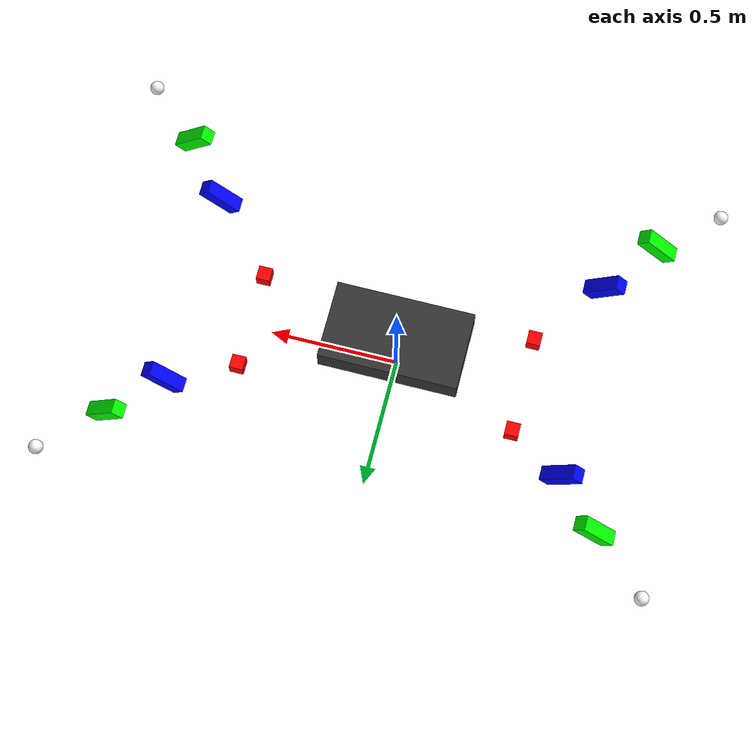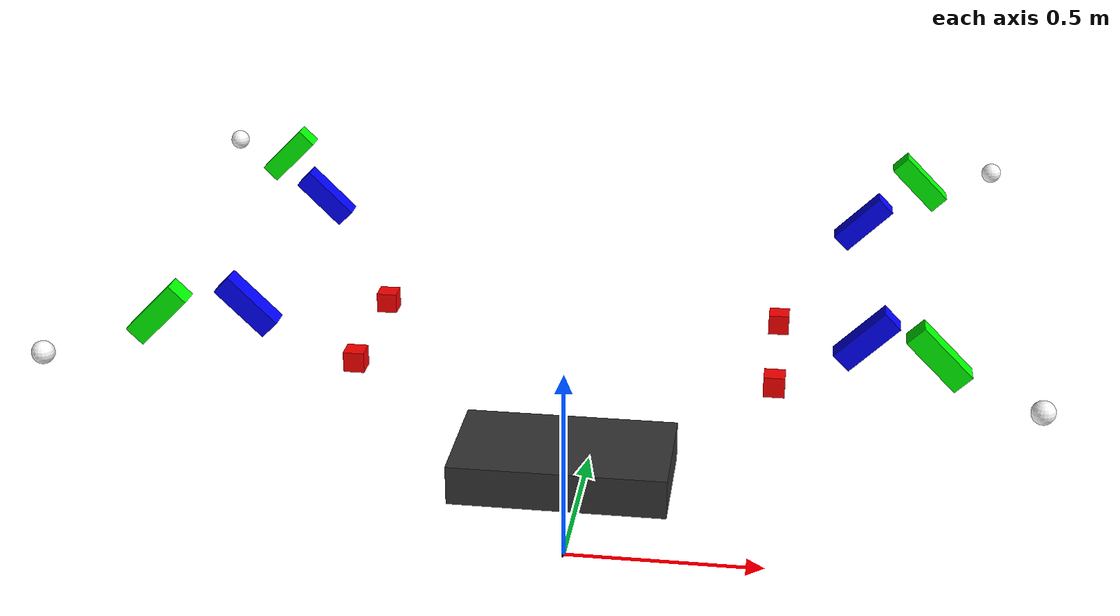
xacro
<?xml version="1.0"?>
<robot name="fyp_quadruped" xmlns:xacro="http://ros.org/wiki/xacro">

  <!-- Model Dimensions -->
  <xacro:property name="pi" value="3.1415" />
  <xacro:property name="body_length" value="0.53" />
  <xacro:property name="body_width" value="0.3" />
  <xacro:property name="body_height" value="0.1" />
  <xacro:property name="shoulder" value="0.05" />
  <xacro:property name="leg_length" value="0.15" />
  <xacro:property name="leg_width" value="0.05" />
  <xacro:property name="leg_height" value="0.05" />
  <xacro:property name="feet_radius" value="0.025"/>
  <xacro:property name="damping_value" value="10" />
  <xacro:property name="friction_value" value="0.1" />

  <!-- Import Rviz colors -->
  <xacro:include filename="$(find fyp_quadruped)/urdf/materials.xacro" />

  <!-- gazebo ros joint state pub plugin -->
  <gazebo>
    <plugin name="joint_state_publisher" filename="libgazebo_ros_joint_state_publisher.so">
      <robotNamespace>/fyp_quadruped</robotNamespace>
      <jointName>shoulder_joint_lf, elbow_joint_lf, knee_joint_lf, shoulder_joint_rf, elbow_joint_rf, knee_joint_rf, shoulder_joint_lb, elbow_joint_lb, knee_joint_lb, shoulder_joint_rb, elbow_joint_rb, knee_joint_rb,</jointName>
      <updateRate>60.0</updateRate>
      <alwaysOn>true</alwaysOn>
    </plugin>
  </gazebo>

  <!-- gazebo ros control plugin -->
<gazebo>
  <plugin name="gazebo_ros_control" filename="libgazebo_ros_control.so">
    <robotNamespace>/fyp_quadruped</robotNamespace>
  </plugin>
</gazebo>

  <!-- Inertias -->
  <xacro:macro name="box_inertial" params="mass length width height">
    <inertial>
      <mass value="${mass}" />
      <inertia ixx="${mass*(height*height+length*length)/12.0}" ixy="0.0" ixz="0.0" iyy="${mass*(width*width+length*length)/12.0}" iyz="0.0" izz="${mass*(width*width+height*height)/12.0}" />
    </inertial>
  </xacro:macro>

  <xacro:macro name="feet_inertial" params="mass radius">
    <inertial>
      <mass value="${mass}" />
      <inertia ixx="${mass*2*(radius*radius)/5.0}" ixy="0.0" ixz="0.0" iyy="${mass*2*(radius*radius)/5.0}" iyz="0.0" izz="${mass*2*(radius*radius)/5.0}" />
    </inertial>
  </xacro:macro>

  <!-- Main Body -->
  <link name="dummy_link">
    <visual>
      <geometry>
        <box size="0.01 0.01 0.01"/>
      </geometry>
      <material name="black"/>
    </visual>
    <inertial>
      <mass value="0.01" />
      <inertia ixx="0.00001" ixy="0.0" ixz="0.0" iyy="0.00001" iyz="0.0" izz="0.00001" />
    </inertial>
    <gazebo reference="dummy_link">
    </gazebo>
  </link>

  <link name="base_link">
    <visual>
      <origin xyz="0 0 0.2621" rpy="0 0 0"/>
      <geometry>
        <box size="${body_length} ${body_width} ${body_height}"/>
      </geometry>
      <material name="grey"/>
    </visual>
    <collision>
      <origin xyz="0 0 0.2621" rpy="0 0 0"/>
      <geometry>
        <box size="${body_width} ${body_width} ${body_height}"/>
      </geometry>
    </collision>
    <xacro:box_inertial mass="${3}" length="${body_length}" width="${body_width}" height="${body_height}"/>
  </link>

  <joint name="dummy_base_joint" type="fixed">
    <parent link="dummy_link"/>
    <child link="base_link"/>
    <origin xyz="0 0 0" rpy="0 0 0"/>
  </joint>
  <gazebo reference="base_link">
    <mu1>100000.0</mu1>
    <mu2>100000.0</mu2>
    <material>Gazebo/Grey</material>
  </gazebo>
  <gazebo reference="dummy_base_joint">
    <provideFeedback>true</provideFeedback>
    <disableFixedJointLumping>true</disableFixedJointLumping>
  </gazebo>

  <!--Left Front Leg-->
  <link name="shoulder_link_lf">
    <collision>
      <origin xyz="0.25 0.175 0.2621" rpy="0 0 0"/>
      <geometry>
        <box size="${shoulder} ${shoulder} ${shoulder}"/>
      </geometry>
    </collision>
    <visual>
      <origin xyz="0.25 0.175 0.2621" rpy="0 0 0"/>
      <geometry>
        <box size="${shoulder} ${shoulder} ${shoulder}"/>
      </geometry>
      <material name="red"/>
    </visual>
    <xacro:box_inertial mass="${0.0625}" length="${shoulder}" width="${shoulder}" height="${shoulder}"/>
  </link>

  <joint name="shoulder_joint_lf" type="revolute">
    <limit effort="100.0" lower="${-0.5*pi}" upper="${0.5*pi}" velocity="0.5"/>
    <origin xyz="0.25 0.15 0.2621"/>
    <axis xyz="1 0 0"/>
    <parent link="base_link"/>
    <child link="shoulder_link_lf"/>
    <dynamics damping="${damping_value}" friction="${friction_value}"/>
  </joint>
  <gazebo reference="shoulder_link_lf">
    <mu1>100000.0</mu1>
    <mu2>100000.0</mu2>
    <material>Gazebo/Red</material>
  </gazebo>

  <link name="thigh_link_lf">
    <collision>
      <origin xyz="0.197 0.175 0.2091" rpy="0 5.5 0"/>
      <geometry>
        <box size="${leg_length} ${leg_width} ${leg_height}"/>
      </geometry>
    </collision>
    <visual>
      <origin xyz="0.197 0.175 0.2091" rpy="0 5.5 0"/>
      <geometry>
        <box size="${leg_length} ${leg_width} ${leg_height}"/>
      </geometry>
      <material name="blue"/>
    </visual>
    <xacro:box_inertial mass="${0.125}" length="${leg_length}" width="${leg_width}" height="${leg_height}"/>
  </link>

  <joint name="elbow_joint_lf" type="revolute">
    <limit effort="100.0" lower="${-0.5*pi}" upper="${0.5*pi}" velocity="0.5"/>
    <origin xyz="0.25 0.175 0.2621"/>
    <axis xyz="0 1 0"/>
    <parent link="shoulder_link_lf"/>
    <child link="thigh_link_lf"/>
    <dynamics damping="${damping_value}" friction="${friction_value}"/>
  </joint>
  <gazebo reference="thigh_link_lf">
    <mu1>100000.0</mu1>
    <mu2>100000.0</mu2>
    <material>Gazebo/Blue</material>
  </gazebo>

  <link name="shank_link_lf">
    <collision>
      <origin xyz="0.197 0.175 0.103" rpy="0 0.785 0"/>
      <geometry>
        <box size="${leg_length} ${leg_width} ${leg_height}"/>
      </geometry>
    </collision>
    <visual>
      <origin xyz="0.197 0.175 0.103" rpy="0 0.785 0"/>
      <geometry>
        <box size="${leg_length} ${leg_width} ${leg_height}"/>
      </geometry>
      <material name="green"/>
    </visual>
    <xacro:box_inertial mass="${0.125}" length="${leg_length}" width="${leg_width}" height="${leg_height}"/>
  </link>

  <joint name="knee_joint_lf" type="revolute">
    <limit effort="100.0" lower="${-0.5*pi}" upper="${0.5*pi}" velocity="0.5"/>
    <origin xyz="0.144 0.175 0.156"/>
    <axis xyz="0 1 0"/>
    <parent link="thigh_link_lf"/>
    <child link="shank_link_lf"/>
    <dynamics damping="${damping_value}" friction="${friction_value}"/>
  </joint>
  <gazebo reference="shank_link_lf">
    <mu1>100000.0</mu1>
    <mu2>100000.0</mu2>
    <material>Gazebo/Green</material>
  </gazebo>

  <link name="feet_link_lf">
    <collision>
      <origin xyz="0.25 0.175 0.025" rpy="0 0 0"/>
      <geometry>
        <sphere radius="${feet_radius}"/>
      </geometry>
    </collision>
    <visual>
      <origin xyz="0.25 0.175 0.025" rpy="0 0 0"/>
      <geometry>
        <sphere radius="${feet_radius}"/>
      </geometry>
      <material name="white"/>
    </visual>
    <xacro:feet_inertial mass="0.05" radius="${feet_radius}"/>
  </link>

  <joint name="ankle_joint_lf" type="fixed">
    <origin xyz="0.144 0.175 0.05"/>
    <axis xyz="0 1 0"/>
    <parent link="shank_link_lf"/>
    <child link="feet_link_lf"/>
  </joint>
  <gazebo reference="feet_link_lf">
    <mu1>100000.0</mu1>
    <mu2>100000.0</mu2>
    <material>Gazebo/White</material>
  </gazebo>

  <!--Right Front Leg-->
  <link name="shoulder_link_rf">
    <collision>
      <origin xyz="0.25 -0.175 0.2621" rpy="0 0 0"/>
      <geometry>
        <box size="${shoulder} ${shoulder} ${shoulder}"/>
      </geometry>
    </collision>
    <visual>
      <origin xyz="0.25 -0.175 0.2621" rpy="0 0 0"/>
      <geometry>
        <box size="${shoulder} ${shoulder} ${shoulder}"/>
      </geometry>
      <material name="red"/>
    </visual>
    <xacro:box_inertial mass="${0.0625}" length="${shoulder}" width="${shoulder}" height="${shoulder}"/>
  </link>

  <joint name="shoulder_joint_rf" type="revolute">
    <limit effort="100.0" lower="${-0.5*pi}" upper="${0.5*pi}" velocity="0.5"/>
    <origin xyz="0.25 0.15 0.2621"/>
    <axis xyz="1 0 0"/>
    <parent link="base_link"/>
    <child link="shoulder_link_rf"/>
    <dynamics damping="${damping_value}" friction="${friction_value}"/>
  </joint>
  <gazebo reference="shoulder_link_rf">
    <mu1>100000.0</mu1>
    <mu2>100000.0</mu2>
    <material>Gazebo/Red</material>
  </gazebo>

  <link name="thigh_link_rf">
    <collision>
      <origin xyz="0.197 -0.175 0.2091" rpy="0 5.5 0"/>
      <geometry>
        <box size="${leg_length} ${leg_width} ${leg_height}"/>
      </geometry>
    </collision>
    <visual>
      <origin xyz="0.197 -0.175 0.2091" rpy="0 5.5 0"/>
      <geometry>
        <box size="${leg_length} ${leg_width} ${leg_height}"/>
      </geometry>
      <material name="blue"/>
    </visual>
    <xacro:box_inertial mass="${0.125}" length="${leg_length}" width="${leg_width}" height="${leg_height}"/>
  </link>

  <joint name="elbow_joint_rf" type="revolute">
    <limit effort="100.0" lower="${-0.5*pi}" upper="${0.5*pi}" velocity="0.5"/>
    <origin xyz="0.25 -0.175 0.2621"/>
    <axis xyz="0 1 0"/>
    <parent link="shoulder_link_rf"/>
    <child link="thigh_link_rf"/>
    <dynamics damping="${damping_value}" friction="${friction_value}"/>
  </joint>
  <gazebo reference="thigh_link_rf">
    <mu1>100000.0</mu1>
    <mu2>100000.0</mu2>
    <material>Gazebo/Blue</material>
  </gazebo>

  <link name="shank_link_rf">
    <collision>
      <origin xyz="0.197 -0.175 0.103" rpy="0 0.785 0"/>
      <geometry>
        <box size="${leg_length} ${leg_width} ${leg_height}"/>
      </geometry>
    </collision>
    <visual>
      <origin xyz="0.197 -0.175 0.103" rpy="0 0.785 0"/>
      <geometry>
        <box size="${leg_length} ${leg_width} ${leg_height}"/>
      </geometry>
      <material name="green"/>
    </visual>
    <xacro:box_inertial mass="${0.125}" length="${leg_length}" width="${leg_width}" height="${leg_height}"/>
  </link>

  <joint name="knee_joint_rf" type="revolute">
    <limit effort="100.0" lower="${-0.5*pi}" upper="${0.5*pi}" velocity="0.5"/>
    <origin xyz="0.144 -0.175 0.156"/>
    <axis xyz="0 1 0"/>
    <parent link="thigh_link_rf"/>
    <child link="shank_link_rf"/>
    <dynamics damping="${damping_value}" friction="${friction_value}"/>
  </joint>
  <gazebo reference="shank_link_rf">
    <mu1>100000.0</mu1>
    <mu2>100000.0</mu2>
    <material>Gazebo/Green</material>
  </gazebo>

  <link name="feet_link_rf">
    <collision>
      <origin xyz="0.25 -0.175 0.025" rpy="0 0 0"/>
      <geometry>
        <sphere radius="${feet_radius}"/>
      </geometry>
    </collision>
    <visual>
      <origin xyz="0.25 -0.175 0.025" rpy="0 0 0"/>
      <geometry>
        <sphere radius="${feet_radius}"/>
      </geometry>
      <material name="white"/>
    </visual>
    <xacro:feet_inertial mass="0.05" radius="${feet_radius}"/>
  </link>

  <joint name="ankle_joint_rf" type="fixed">
    <origin xyz="0.144 -0.175 0.05"/>
    <axis xyz="0 1 0"/>
    <parent link="shank_link_rf"/>
    <child link="feet_link_rf"/>
  </joint>
  <gazebo reference="feet_link_rf">
    <mu1>100000.0</mu1>
    <mu2>100000.0</mu2>
    <material>Gazebo/White</material>
  </gazebo>

  <!--Left Back Leg-->
  <link name="shoulder_link_lb">
    <collision>
      <origin xyz="-0.25 0.175 0.2621" rpy="0 0 0"/>
      <geometry>
        <box size="${shoulder} ${shoulder} ${shoulder}"/>
      </geometry>
    </collision>
    <visual>
      <origin xyz="-0.25 0.175 0.2621" rpy="0 0 0"/>
      <geometry>
        <box size="${shoulder} ${shoulder} ${shoulder}"/>
      </geometry>
      <material name="red"/>
    </visual>
    <xacro:box_inertial mass="${0.0625}" length="${shoulder}" width="${shoulder}" height="${shoulder}"/>
  </link>

  <joint name="shoulder_joint_lb" type="revolute">
    <limit effort="100.0" lower="${-0.5*pi}" upper="${0.5*pi}" velocity="0.5"/>
    <origin xyz="-0.25 0.15 0.2621"/>
    <axis xyz="1 0 0"/>
    <parent link="base_link"/>
    <child link="shoulder_link_lb"/>
    <dynamics damping="${damping_value}" friction="${friction_value}"/>
  </joint>
  <gazebo reference="shoulder_link_lb">
    <mu1>100000.0</mu1>
    <mu2>100000.0</mu2>
    <material>Gazebo/Red</material>
  </gazebo>

  <link name="thigh_link_lb">
    <collision>
      <origin xyz="-0.197 0.175 0.2091" rpy="0 0.785 0"/>
      <geometry>
        <box size="${leg_length} ${leg_width} ${leg_height}"/>
      </geometry>
    </collision>
    <visual>
      <origin xyz="-0.197 0.175 0.2091" rpy="0 0.785 0"/>
      <geometry>
        <box size="${leg_length} ${leg_width} ${leg_height}"/>
      </geometry>
      <material name="blue"/>
    </visual>
    <xacro:box_inertial mass="${0.125}" length="${leg_length}" width="${leg_width}" height="${leg_height}"/>
  </link>

  <joint name="elbow_joint_lb" type="revolute">
    <limit effort="100.0" lower="${-0.5*pi}" upper="${0.5*pi}" velocity="0.5"/>
    <origin xyz="-0.25 0.175 0.2621"/>
    <axis xyz="0 1 0"/>
    <parent link="shoulder_link_lb"/>
    <child link="thigh_link_lb"/>
    <dynamics damping="${damping_value}" friction="${friction_value}"/>
  </joint>
  <gazebo reference="thigh_link_lb">
    <mu1>100000.0</mu1>
    <mu2>100000.0</mu2>
    <material>Gazebo/Blue</material>
  </gazebo>

  <link name="shank_link_lb">
    <collision>
      <origin xyz="-0.197 0.175 0.103" rpy="0 5.5 0"/>
      <geometry>
        <box size="${leg_length} ${leg_width} ${leg_height}"/>
      </geometry>
    </collision>
    <visual>
      <origin xyz="-0.197 0.175 0.103" rpy="0 5.5 0"/>
      <geometry>
        <box size="${leg_length} ${leg_width} ${leg_height}"/>
      </geometry>
      <material name="green"/>
    </visual>
    <xacro:box_inertial mass="${0.125}" length="${leg_length}" width="${leg_width}" height="${leg_height}"/>
  </link>

  <joint name="knee_joint_lb" type="revolute">
    <limit effort="100.0" lower="${-0.5*pi}" upper="${0.5*pi}" velocity="0.5"/>
    <origin xyz="-0.144 0.175 0.156"/>
    <axis xyz="0 1 0"/>
    <parent link="thigh_link_lb"/>
    <child link="shank_link_lb"/>
    <dynamics damping="${damping_value}" friction="${friction_value}"/>
  </joint>
  <gazebo reference="shank_link_lb">
    <mu1>100000.0</mu1>
    <mu2>100000.0</mu2>
    <material>Gazebo/Green</material>
  </gazebo>

  <link name="feet_link_lb">
    <collision>
      <origin xyz="-0.25 0.175 0.025" rpy="0 0 0"/>
      <geometry>
        <sphere radius="${feet_radius}"/>
      </geometry>
    </collision>
    <visual>
      <origin xyz="-0.25 0.175 0.025" rpy="0 0 0"/>
      <geometry>
        <sphere radius="${feet_radius}"/>
      </geometry>
      <material name="white"/>
    </visual>
    <xacro:feet_inertial mass="0.05" radius="${feet_radius}"/>
  </link>

  <joint name="ankle_joint_lb" type="fixed">
    <origin xyz="-0.144 0.175 0.05"/>
    <axis xyz="0 1 0"/>
    <parent link="shank_link_lb"/>
    <child link="feet_link_lb"/>
  </joint>
  <gazebo reference="feet_link_lb">
    <mu1>100000.0</mu1>
    <mu2>100000.0</mu2>
    <material>Gazebo/White</material>
  </gazebo>

  <!--Right Back Leg-->
  <link name="shoulder_link_rb">
    <collision>
      <origin xyz="-0.25 -0.175 0.2621" rpy="0 0 0"/>
      <geometry>
        <box size="${shoulder} ${shoulder} ${shoulder}"/>
      </geometry>
    </collision>
    <visual>
      <origin xyz="-0.25 -0.175 0.2621" rpy="0 0 0"/>
      <geometry>
        <box size="${shoulder} ${shoulder} ${shoulder}"/>
      </geometry>
      <material name="red"/>
    </visual>
    <xacro:box_inertial mass="${0.0625}" length="${shoulder}" width="${shoulder}" height="${shoulder}"/>
  </link>

  <joint name="shoulder_joint_rb" type="revolute">
    <limit effort="100.0" lower="${-0.5*pi}" upper="${0.5*pi}" velocity="0.5"/>
    <origin xyz="-0.25 0.15 0.2621"/>
    <axis xyz="1 0 0"/>
    <parent link="base_link"/>
    <child link="shoulder_link_rb"/>
    <dynamics damping="${damping_value}" friction="${friction_value}"/>
  </joint>
  <gazebo reference="shoulder_link_rb">
    <mu1>100000.0</mu1>
    <mu2>100000.0</mu2>
    <material>Gazebo/Red</material>
  </gazebo>

  <link name="thigh_link_rb">
    <collision>
      <origin xyz="-0.197 -0.175 0.2091" rpy="0 0.785 0"/>
      <geometry>
        <box size="${leg_length} ${leg_width} ${leg_height}"/>
      </geometry>
    </collision>
    <visual>
      <origin xyz="-0.197 -0.175 0.2091" rpy="0 0.785 0"/>
      <geometry>
        <box size="${leg_length} ${leg_width} ${leg_height}"/>
      </geometry>
      <material name="blue"/>
    </visual>
    <xacro:box_inertial mass="${0.125}" length="${leg_length}" width="${leg_width}" height="${leg_height}"/>
  </link>

  <joint name="elbow_joint_rb" type="revolute">
    <limit effort="100.0" lower="${-0.5*pi}" upper="${0.5*pi}" velocity="0.5"/>
    <origin xyz="-0.25 -0.175 0.2621"/>
    <axis xyz="0 1 0"/>
    <parent link="shoulder_link_rb"/>
    <child link="thigh_link_rb"/>
    <dynamics damping="${damping_value}" friction="${friction_value}"/>
  </joint>
  <gazebo reference="thigh_link_rb">
    <mu1>100000.0</mu1>
    <mu2>100000.0</mu2>
    <material>Gazebo/Blue</material>
  </gazebo>

  <link name="shank_link_rb">
    <collision>
      <origin xyz="-0.197 -0.175 0.103" rpy="0 5.5 0"/>
      <geometry>
        <box size="${leg_length} ${leg_width} ${leg_height}"/>
      </geometry>
    </collision>
    <visual>
      <origin xyz="-0.197 -0.175 0.103" rpy="0 5.5 0"/>
      <geometry>
        <box size="${leg_length} ${leg_width} ${leg_height}"/>
      </geometry>
      <material name="green"/>
    </visual>
    <xacro:box_inertial mass="${0.125}" length="${leg_length}" width="${leg_width}" height="${leg_height}"/>
  </link>

  <joint name="knee_joint_rb" type="revolute">
    <limit effort="100.0" lower="${-0.5*pi}" upper="${0.5*pi}" velocity="0.5"/>
    <origin xyz="-0.144 -0.175 0.156"/>
    <axis xyz="0 1 0"/>
    <parent link="thigh_link_rb"/>
    <child link="shank_link_rb"/>
    <dynamics damping="${damping_value}" friction="${friction_value}"/>
  </joint>
  <gazebo reference="shank_link_rb">
    <mu1>100000.0</mu1>
    <mu2>100000.0</mu2>
    <material>Gazebo/Green</material>
  </gazebo>

  <link name="feet_link_rb">
    <collision>
      <origin xyz="-0.25 -0.175 0.025" rpy="0 0 0"/>
      <geometry>
        <sphere radius="${feet_radius}"/>
      </geometry>
    </collision>
    <visual>
      <origin xyz="-0.25 -0.175 0.025" rpy="0 0 0"/>
      <geometry>
        <sphere radius="${feet_radius}"/>
      </geometry>
      <material name="white"/>
    </visual>
    <xacro:feet_inertial mass="0.05" radius="${feet_radius}"/>
  </link>

  <joint name="ankle_joint_rb" type="fixed">
    <origin xyz="-0.144 -0.175 0.05"/>
    <axis xyz="0 1 0"/>
    <parent link="shank_link_rb"/>
    <child link="feet_link_rb"/>
  </joint>
  <gazebo reference="feet_link_rb">
    <mu1>100000.0</mu1>
    <mu2>100000.0</mu2>
    <material>Gazebo/White</material>
  </gazebo>

  <!-- transmissions -->
  <transmission name="shoulder_joint_lf_trans">
    <type>transmission_interface/SimpleTransmission</type>
    <joint name="shoulder_joint_lf">
      <hardwareInterface>EffortJointInterface</hardwareInterface>
    </joint>
    <actuator name="shoulder_joint_motor">
      <hardwareInterface>EffortJointInterface</hardwareInterface>
      <mechanicalReduction>20</mechanicalReduction>
    </actuator>
  </transmission>

  <transmission name="elbow_joint_lf_trans">
    <type>transmission_interface/SimpleTransmission</type>
    <joint name="elbow_joint_lf">
      <hardwareInterface>EffortJointInterface</hardwareInterface>
    </joint>
    <actuator name="elbow_joint_motor">
      <hardwareInterface>EffortJointInterface</hardwareInterface>
      <mechanicalReduction>20</mechanicalReduction>
    </actuator>
  </transmission>

  <transmission name="knee_joint_lf_trans">
    <type>transmission_interface/SimpleTransmission</type>
    <joint name="knee_joint_lf">
      <hardwareInterface>EffortJointInterface</hardwareInterface>
    </joint>
    <actuator name="knee_joint_motor">
      <hardwareInterface>EffortJointInterface</hardwareInterface>
      <mechanicalReduction>20</mechanicalReduction>
    </actuator>
  </transmission>

  <transmission name="shoulder_joint_rf_trans">
    <type>transmission_interface/SimpleTransmission</type>
    <joint name="shoulder_joint_rf">
      <hardwareInterface>EffortJointInterface</hardwareInterface>
     </joint>
     <actuator name="shoulder_joint_motor">
       <hardwareInterface>EffortJointInterface</hardwareInterface>
       <mechanicalReduction>20</mechanicalReduction>
     </actuator>
   </transmission>

  <transmission name="elbow_joint_rf_trans">
    <type>transmission_interface/SimpleTransmission</type>
    <joint name="elbow_joint_rf">
       <hardwareInterface>EffortJointInterface</hardwareInterface>
    </joint>
    <actuator name="elbow_joint_motor">
      <hardwareInterface>EffortJointInterface</hardwareInterface>
      <mechanicalReduction>20</mechanicalReduction>
    </actuator>
  </transmission>

  <transmission name="knee_joint_rf_trans">
    <type>transmission_interface/SimpleTransmission</type>
    <joint name="knee_joint_rf">
      <hardwareInterface>EffortJointInterface</hardwareInterface>
    </joint>
    <actuator name="knee_joint_rf_motor">
      <hardwareInterface>EffortJointInterface</hardwareInterface>
      <mechanicalReduction>20</mechanicalReduction>
    </actuator>
  </transmission>

  <transmission name="shoulder_joint_lb_trans">
    <type>transmission_interface/SimpleTransmission</type>
    <joint name="shoulder_joint_lb">
      <hardwareInterface>EffortJointInterface</hardwareInterface>
    </joint>
    <actuator name="shoulder_joint_lb_motor">
      <hardwareInterface>EffortJointInterface</hardwareInterface>
      <mechanicalReduction>20</mechanicalReduction>
    </actuator>
  </transmission>

  <transmission name="elbow_joint_lb_trans">
    <type>transmission_interface/SimpleTransmission</type>
    <joint name="elbow_joint_lb">
      <hardwareInterface>EffortJointInterface</hardwareInterface>
    </joint>
    <actuator name="elbow_joint_lb_motor">
      <hardwareInterface>EffortJointInterface</hardwareInterface>
      <mechanicalReduction>20</mechanicalReduction>
    </actuator>
  </transmission>

  <transmission name="knee_joint_lb_trans">
    <type>transmission_interface/SimpleTransmission</type>
    <joint name="knee_joint_lb">
      <hardwareInterface>EffortJointInterface</hardwareInterface>
    </joint>
    <actuator name="knee_joint_lb_motor">
      <hardwareInterface>EffortJointInterface</hardwareInterface>
      <mechanicalReduction>20</mechanicalReduction>
    </actuator>
  </transmission>

  <transmission name="shoulder_joint_rb_trans">
    <type>transmission_interface/SimpleTransmission</type>
    <joint name="shoulder_joint_rb">
      <hardwareInterface>EffortJointInterface</hardwareInterface>
    </joint>
    <actuator name="shoulder_joint_rb_motor">
      <hardwareInterface>EffortJointInterface</hardwareInterface>
      <mechanicalReduction>20</mechanicalReduction>
    </actuator>
  </transmission>

  <transmission name="elbow_joint_rb_trans">
    <type>transmission_interface/SimpleTransmission</type>
    <joint name="elbow_joint_rb">
      <hardwareInterface>EffortJointInterface</hardwareInterface>
    </joint>
    <actuator name="elbow_joint_rb_motor">
      <hardwareInterface>EffortJointInterface</hardwareInterface>
      <mechanicalReduction>20</mechanicalReduction>
    </actuator>
  </transmission>

  <transmission name="knee_joint_rb_trans">
    <type>transmission_interface/SimpleTransmission</type>
    <joint name="knee_joint_rb">
      <hardwareInterface>EffortJointInterface</hardwareInterface>
    </joint>
    <actuator name="knee_joint_rb_motor">
      <hardwareInterface>EffortJointInterface</hardwareInterface>
      <mechanicalReduction>20</mechanicalReduction>
    </actuator>
  </transmission>

</robot>

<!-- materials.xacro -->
<robot>

  <material name="black">
    <color rgba="0.0 0.0 0.0 1.0"/>
  </material>

  <material name="blue">
    <color rgba="0.0 0.0 1.0 1.0"/>
  </material>

  <material name="green">
    <color rgba="0.0 1.0 0.0 1.0"/>
  </material>

  <material name="grey">
    <color rgba="0.2 0.2 0.2 1.0"/>
  </material>

  <material name="orange">
    <color rgba="${255/255} ${108/255} ${10/255} 1.0"/>
  </material>

  <material name="brown">
    <color rgba="${222/255} ${207/255} ${195/255} 1.0"/>
  </material>

  <material name="red">
    <color rgba="1.0 0.0 0.0 1.0"/>
  </material>

  <material name="white">
    <color rgba="1.0 1.0 1.0 1.0"/>
  </material>

</robot>
